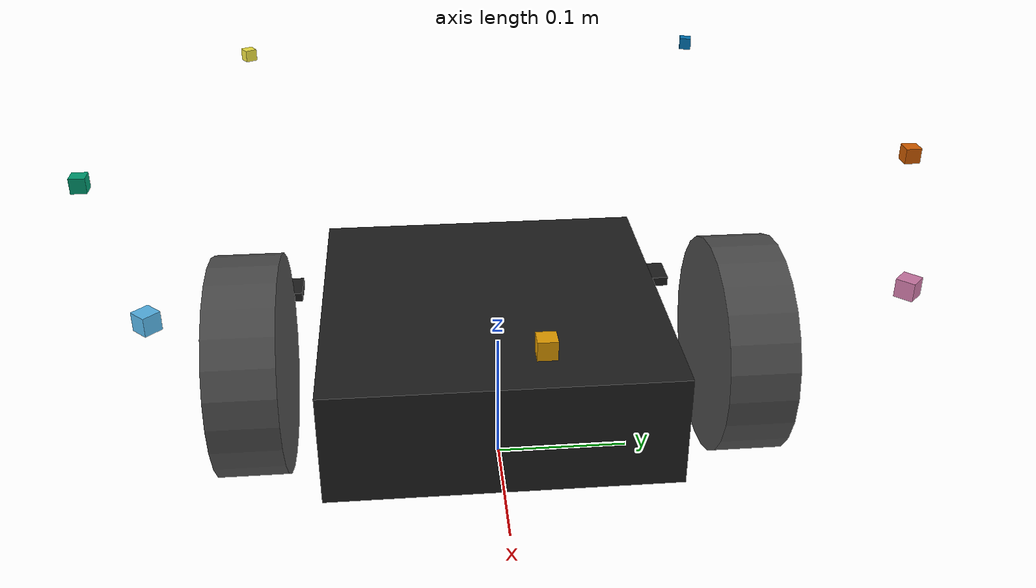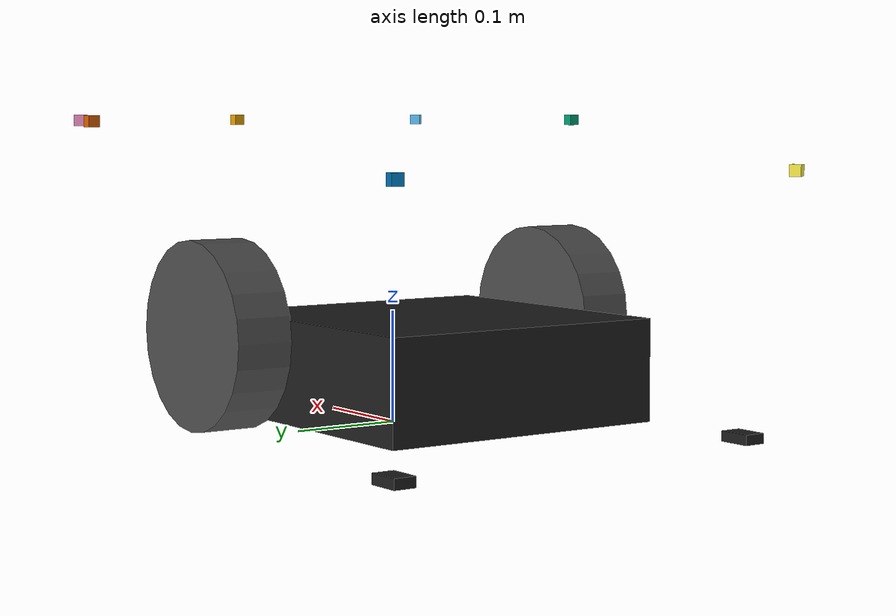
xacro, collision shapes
<?xml version="1.0" ?>
<robot name="zetabank" xmlns:xacro="http://ros.org/wiki/xacro">
  <xacro:include filename="$(find zetabank_description)/urdf/common_properties.xacro"/>
  <xacro:include filename="$(find zetabank_description)/urdf/zetabank.gazebo.xacro"/>
  <xacro:include filename="$(find zetabank_description)/urdf/sonar_sensor.urdf.xacro"/>

  <link name="base_footprint"/>

  <joint name="base_joint" type="fixed">
    <parent link="base_footprint"/>
    <child link="base_link" />
    <origin xyz="0 0 0.010" rpy="0 0 ${M_PI*0.5}"/>
  </joint>

  <link name="base_link">
    <visual>
      <origin xyz="-0 -0.33 0.0" rpy="0 0 0"/>
      <geometry>
        <mesh filename="package://zetabank_description/meshes/zetabank.STL" scale="1 1 1"/>
      </geometry>
      <material name="light_black"/>
    </visual>
    <collision>
      <origin xyz="0 0.064  0.048" rpy="0 0 ${M_PI*0.5}"/>
      <geometry>
        <box size="0.265 0.265 0.089"/>
      </geometry>
    </collision>
    <inertial>
      <origin xyz="0 0.064 0.048" rpy="0 0 ${M_PI*0.5}"/>
      <mass value="0.01"/>
      <inertia ixx="8.7002718e-03" ixy="-4.7576583e-05" ixz="1.1160499e-04"
               iyy="8.6195418e-03" iyz="-3.5422299e-06"
               izz="1.4612727e-02" />
    </inertial>

  </link>

<joint name="wheel_left_joint" type="continuous">
    <parent link="base_link"/>
    <child link="wheel_left_link"/>
    <origin xyz="0.180 0.0  0.080" rpy="${-M_PI*0.5} 0 ${-M_PI*0.5}"/>
    <axis xyz="0 0 1"/>
  </joint>

  <link name="wheel_left_link">
    <collision>
      <origin rpy="0 0 0" xyz="0 0 0"/>
      <geometry>
        <cylinder length="0.050" radius="0.0812"/>
      </geometry>
    </collision>
    <inertial>
      <origin xyz="0 0 0" />
      <mass value="2.8498940e-02" />
      <inertia ixx="1.1175580e-05" ixy="-4.2369783e-11" ixz="-5.9381719e-09"
               iyy="1.1192413e-05" iyz="-1.4400107e-11"
               izz="2.0712558e-05" />
      </inertial>
  </link>

  <joint name="wheel_right_joint" type="continuous">
    <parent link="base_link"/>
    <child link="wheel_right_link"/>
    <origin xyz="-0.180 0.0  0.080" rpy="${-M_PI*0.5} 0 ${-M_PI*0.5}"/>
    <axis xyz="0 0 1"/>
  </joint>

  <link name="wheel_right_link">
    <collision>
      <origin rpy="0 0 0" xyz="0 0 0"/>
      <geometry>
        <cylinder length="0.050" radius="0.0812"/>
      </geometry>
    </collision>
    <inertial>
      <origin xyz="0 0 0" />
      <mass value="2.8498940e-02" />
      <inertia ixx="1.1175580e-05" ixy="-4.2369783e-11" ixz="-5.9381719e-09"
               iyy="1.1192413e-05" iyz="-1.4400107e-11"
               izz="2.0712558e-05" />
      </inertial>
  </link>

  <joint name="caster_back_right_joint" type="fixed">
    <parent link="base_link"/>
    <child link="caster_back_right_link"/>
    <origin xyz="-0.177 0.264 -0.004" rpy="${-M_PI*0.5} 0 ${-M_PI*0.5}"/>
  </joint>

  <link name="caster_back_right_link">
    <collision>
      <origin xyz="0 0.001 0" rpy="0 0 0"/>
      <geometry>
        <box size="0.030 0.009 0.020"/>
      </geometry>
    </collision>

    <inertial>
      <origin xyz="0 0 0" />
      <mass value="0.005" />
      <inertia ixx="0.001" ixy="0.0" ixz="0.0"
               iyy="0.001" iyz="0.0"
               izz="0.001" />
    </inertial>
  </link>

  <joint name="caster_back_left_joint" type="fixed">
    <parent link="base_link"/>
    <child link="caster_back_left_link"/>
    <origin xyz="0.177 0.264 -0.004" rpy="${-M_PI*0.5} 0 ${-M_PI*0.5}"/>
  </joint>

  <link name="caster_back_left_link">
    <collision>
      <origin xyz="0 0.001 0" rpy="0 0 0"/>
      <geometry>
        <box size="0.030 0.009 0.020"/>
      </geometry>
    </collision>

    <inertial>
      <origin xyz="0 0 0" />
      <mass value="0.005" />
      <inertia ixx="0.001" ixy="0.0" ixz="0.0"
               iyy="0.001" iyz="0.0"
               izz="0.001" />
    </inertial>
  </link>

  <joint name="imu_joint" type="fixed">
    <parent link="base_link"/>
    <child link="imu_link"/>
    <origin xyz="0.0 -0.07 0.37" rpy="0 0 ${-M_PI*0.5}"/>
  </joint>

  <link name="imu_link"/>

  <joint name="lidar_joint" type="fixed">
    <parent link="base_link"/>
    <child link="lidar_link"/>
    <origin xyz="0 -0.28 0.21" rpy="0 0 ${-M_PI*0.5}"/>
  </joint>
  <link name="lidar_link"/>

<xacro:sonar_sensor name="sonar_f" parent="base_link" ros_topic="sonar_f" update_rate="50" min_range="0.1" max_range="0.5" field_of_view="${25*M_PI/180}" ray_count="3" visualize="false">
  <origin xyz="0 -0.28 0.260" rpy="0 0 ${-M_PI*0.5}"/>
</xacro:sonar_sensor>
<xacro:sonar_sensor name="sonar_fr" parent="base_link" ros_topic="sonar_fr" update_rate="50" min_range="0.1" max_range="0.5" field_of_view="${25*M_PI/180}" ray_count="3" visualize="false">
  <origin xyz="-0.19 -0.24 0.260" rpy="0 0 ${-M_PI*0.75}"/>
</xacro:sonar_sensor>
<xacro:sonar_sensor name="sonar_r" parent="base_link" ros_topic="sonar_r" update_rate="50" min_range="0.1" max_range="0.5" field_of_view="${25*M_PI/180}" ray_count="3" visualize="false">
  <origin xyz="-0.26 -0.07 0.260" rpy="0 0 ${-M_PI}"/>
</xacro:sonar_sensor>
<xacro:sonar_sensor name="sonar_br" parent="base_link" ros_topic="sonar_br" update_rate="50" min_range="0.1" max_range="0.5" field_of_view="${25*M_PI/180}" ray_count="3" visualize="false">
  <origin xyz="-0.2 0.3 0.22" rpy="0 0 ${M_PI*0.666}"/>
</xacro:sonar_sensor>
<xacro:sonar_sensor name="sonar_bl" parent="base_link" ros_topic="sonar_bl" update_rate="50" min_range="0.1" max_range="0.5" field_of_view="${25*M_PI/180}" ray_count="3" visualize="false">
  <origin xyz="0.2 0.3 0.22" rpy="0 0 ${M_PI*0.433}"/>
</xacro:sonar_sensor>
<xacro:sonar_sensor name="sonar_l" parent="base_link" ros_topic="sonar_l" update_rate="50" min_range="0.1" max_range="0.5" field_of_view="${25*M_PI/180}" ray_count="3" visualize="false">
  <origin xyz="0.26 -0.07 0.260" rpy="0 0 0"/>
</xacro:sonar_sensor>
<xacro:sonar_sensor name="sonar_fl" parent="base_link" ros_topic="sonar_fl" update_rate="50" min_range="0.1" max_range="0.5" field_of_view="${25*M_PI/180}" ray_count="3" visualize="false">
  <origin xyz="0.19 -0.24 0.260" rpy="0 0 ${-M_PI*0.25}"/>
</xacro:sonar_sensor>

</robot>

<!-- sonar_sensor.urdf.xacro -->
<robot name="nscl" xmlns:xacro="http://ros.org/wiki/xacro">
  <xacro:macro name="sonar_sensor" params="name parent *origin ros_topic update_rate min_range max_range field_of_view ray_count visualize">
    <joint name="${name}_joint" type="fixed">
      <xacro:insert_block name="origin" />
      <parent link="${parent}"/>
      <child link="${name}"/>
    </joint>

    <link name="${name}">
      <inertial>
        <mass value="0.001" />
        <origin xyz="0 0 0" rpy="0 0 0" />
        <inertia ixx="0.000000017" ixy="0" ixz="0" iyy="0.000000017" iyz="0" izz="0.000000017" />
      </inertial>
      <collision>
        <origin xyz="0 0 0" rpy="0 0 0" />
        <geometry>
          <box size="0.01 0.01 0.01" />
        </geometry>
      </collision>
    </link>

    <gazebo reference="${name}">
      <sensor type="ray" name="${name}">
        <always_on>true</always_on>
        <update_rate>${update_rate}</update_rate>
        <pose>0 0 0 0 0 0</pose>
        <visualize>${visualize}</visualize>
        <ray>
          <scan>
            <horizontal>
              <samples>${ray_count}</samples>
              <resolution>1</resolution>
              <min_angle>-${field_of_view/2}</min_angle>
              <max_angle> ${field_of_view/2}</max_angle>
            </horizontal>
            <vertical>
              <samples>${ray_count}</samples>
              <resolution>1</resolution>
              <min_angle>-${field_of_view/2}</min_angle>
              <max_angle> ${field_of_view/2}</max_angle>
            </vertical>
          </scan>
          <range>
            <min>${min_range}</min>
            <max>${max_range}</max>
            <resolution>0.01</resolution>
          </range>
        </ray>

        <plugin name="gazebo_ros_${name}_controller" filename="libhector_gazebo_ros_sonar.so">
          <gaussianNoise>0.005</gaussianNoise>
          <topicName>${ros_topic}</topicName>
          <frameId>${name}</frameId>
        </plugin>
      </sensor>
    </gazebo>
  </xacro:macro>
</robot>
